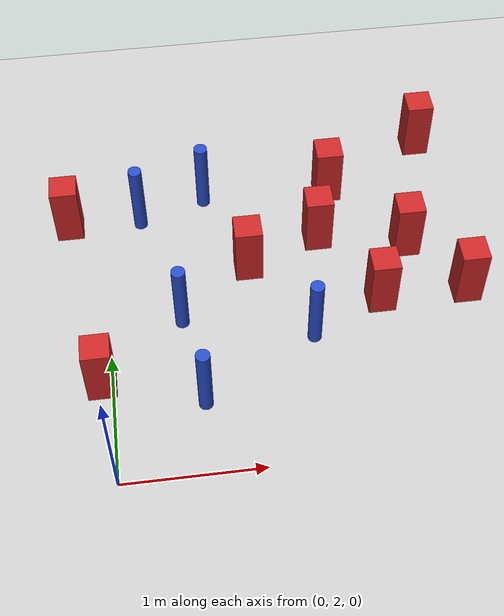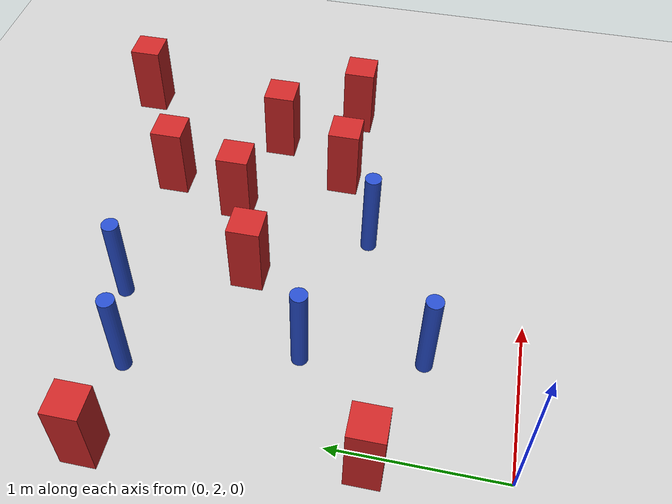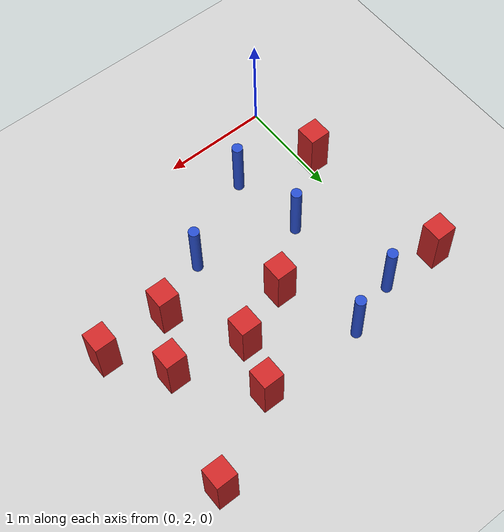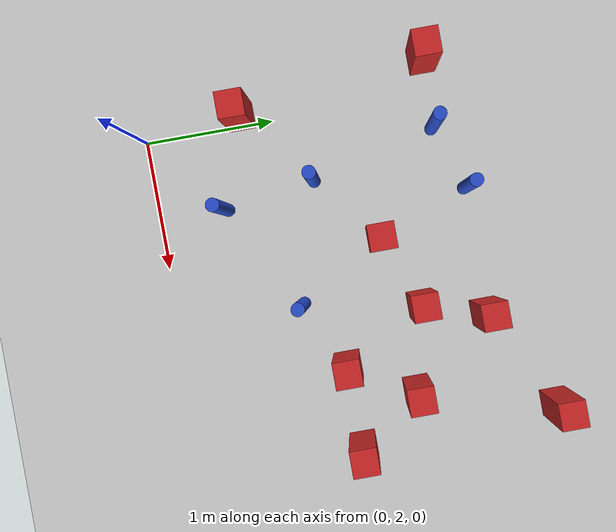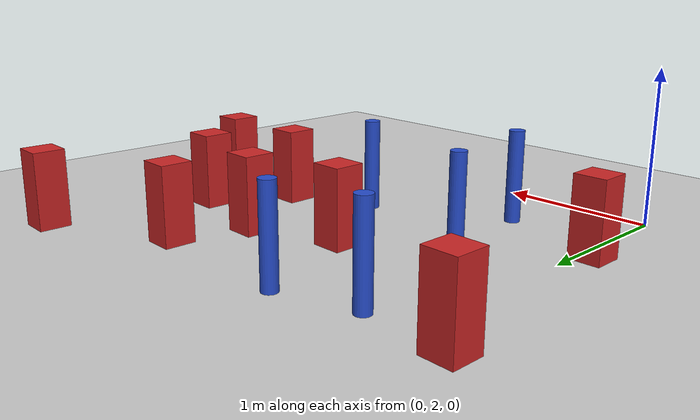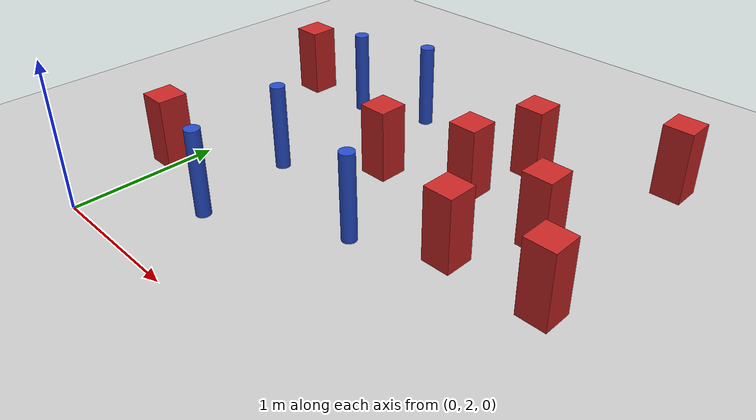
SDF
<sdf version="1.6">
 <world name="default">
  <model name="ground_plane">
   <static>1</static>
   <link name="link">
    <collision name="collision">
     <geometry><plane><normal>0 0 1</normal><size>100 100</size></plane></geometry>
     <surface><friction><ode><mu>100</mu><mu2>50</mu2></ode></friction></surface>
    </collision>
    <visual name="visual">
     <cast_shadows>0</cast_shadows>
     <geometry><plane><normal>0 0 1</normal><size>100 100</size></plane></geometry>
     <material>
      <ambient>1.0 1.0 1.0 1.0</ambient>
      <diffuse>0.8 0.8 0.8 1.0</diffuse>
      <specular>0.01 0.01 0.01 1.000000</specular>
     </material>
    </visual>
   </link>
  </model>
  <model name="pole_obstacle86">
   <static>true</static>
   <pose>0.523984293658 3.24302448291 2.88873142074e-08 -9.90536689505e-09 4.60219948997e-07 -1.20965994956e-07</pose>
   <link name="link">
    <pose>0 0 0.3 0 -0 0</pose>
    <inertial>
     <mass>1</mass>
     <inertia><ixx>0.145833</ixx><ixy>0</ixy><ixz>0</ixz><iyy>0.145833</iyy><iyz>0</iyz><izz>0.125</izz></inertia>
    </inertial>
    <collision name="collision">
     <geometry><cylinder><radius>0.05</radius><length>.6</length></cylinder></geometry>
    </collision>
    <visual name="visual">
     <geometry><cylinder><radius>0.05</radius><length>.6</length></cylinder></geometry>
     <material>
      <script><name>Gazebo/Blue</name><uri>file://media/materials/scripts/gazebo.material</uri></script>
     </material>
    </visual>
   </link>
  </model>
  <model name="pole_obstacle113">
   <static>true</static>
   <pose>0.784421894727 4.39077616772 2.88873142074e-08 -9.90536689661e-09 4.60219948993e-07 -1.20965994957e-07</pose>
   <link name="link">
    <pose>0 0 0.3 0 -0 0</pose>
    <inertial>
     <mass>1</mass>
     <inertia><ixx>0.145833</ixx><ixy>0</ixy><ixz>0</ixz><iyy>0.145833</iyy><iyz>0</iyz><izz>0.125</izz></inertia>
    </inertial>
    <collision name="collision">
     <geometry><cylinder><radius>0.05</radius><length>.6</length></cylinder></geometry>
    </collision>
    <visual name="visual">
     <geometry><cylinder><radius>0.05</radius><length>.6</length></cylinder></geometry>
     <material>
      <script><name>Gazebo/Blue</name><uri>file://media/materials/scripts/gazebo.material</uri></script>
     </material>
    </visual>
   </link>
  </model>
  <model name="pole_obstacle123">
   <static>true</static>
   <pose>0.280689724129 4.22093316909 2.88873142074e-08 -9.90536689592e-09 4.60219948995e-07 -1.20965994956e-07</pose>
   <link name="link">
    <pose>0 0 0.3 0 -0 0</pose>
    <inertial>
     <mass>1</mass>
     <inertia><ixx>0.145833</ixx><ixy>0</ixy><ixz>0</ixz><iyy>0.145833</iyy><iyz>0</iyz><izz>0.125</izz></inertia>
    </inertial>
    <collision name="collision">
     <geometry><cylinder><radius>0.05</radius><length>.6</length></cylinder></geometry>
    </collision>
    <visual name="visual">
     <geometry><cylinder><radius>0.05</radius><length>.6</length></cylinder></geometry>
     <material>
      <script><name>Gazebo/Blue</name><uri>file://media/materials/scripts/gazebo.material</uri></script>
     </material>
    </visual>
   </link>
  </model>
  <model name="pole_obstacle127">
   <static>true</static>
   <pose>1.45623892513 2.99795898132 2.88873142074e-08 -9.90536689791e-09 4.6021994899e-07 -1.20965994959e-07</pose>
   <link name="link">
    <pose>0 0 0.3 0 -0 0</pose>
    <inertial>
     <mass>1</mass>
     <inertia><ixx>0.145833</ixx><ixy>0</ixy><ixz>0</ixz><iyy>0.145833</iyy><iyz>0</iyz><izz>0.125</izz></inertia>
    </inertial>
    <collision name="collision">
     <geometry><cylinder><radius>0.05</radius><length>.6</length></cylinder></geometry>
    </collision>
    <visual name="visual">
     <geometry><cylinder><radius>0.05</radius><length>.6</length></cylinder></geometry>
     <material>
      <script><name>Gazebo/Blue</name><uri>file://media/materials/scripts/gazebo.material</uri></script>
     </material>
    </visual>
   </link>
  </model>
  <model name="square_post_obstacle124">
   <static>true</static>
   <pose>1.76323017512 4.37429988424 8.22691968438e-08 7.2212513382e-06 -7.54495500217e-07 2.29674213826e-05</pose>
   <link name="link">
    <pose>0 0 0.25 0 -0 0</pose>
    <inertial>
     <mass>100</mass>
     <inertia>
      <ixx>0.166667</ixx>
      <ixy>0</ixy>
      <ixz>0</ixz>
      <iyy>0.166667</iyy>
      <iyz>0</iyz>
      <izz>0.166667</izz>
     </inertia>
    </inertial>
    <collision name="collision"><geometry><box><size>.2 .2 .5</size></box></geometry></collision>
    <visual name="visual">
     <geometry><box><size>.2 .2 .5</size></box></geometry>
     <material>
      <script><name>Gazebo/Red</name><uri>file://media/materials/scripts/gazebo.material</uri></script>
     </material>
    </visual>
   </link>
  </model>
  <model name="square_post_obstacle129">
   <static>true</static>
   <pose>1.6125320471 3.89478876554 8.22691968438e-08 7.2212513382e-06 -7.54495500217e-07 2.29674213826e-05</pose>
   <link name="link">
    <pose>0 0 0.25 0 -0 0</pose>
    <inertial>
     <mass>100</mass>
     <inertia>
      <ixx>0.166667</ixx>
      <ixy>0</ixy>
      <ixz>0</ixz>
      <iyy>0.166667</iyy>
      <iyz>0</iyz>
      <izz>0.166667</izz>
     </inertia>
    </inertial>
    <collision name="collision"><geometry><box><size>.2 .2 .5</size></box></geometry></collision>
    <visual name="visual">
     <geometry><box><size>.2 .2 .5</size></box></geometry>
     <material>
      <script><name>Gazebo/Red</name><uri>file://media/materials/scripts/gazebo.material</uri></script>
     </material>
    </visual>
   </link>
  </model>
  <model name="square_post_obstacle155">
   <static>true</static>
   <pose>1.9850035333 3.25444834209 8.22691968438e-08 7.2212513382e-06 -7.54495500217e-07 2.29674213826e-05</pose>
   <link name="link">
    <pose>0 0 0.25 0 -0 0</pose>
    <inertial>
     <mass>100</mass>
     <inertia>
      <ixx>0.166667</ixx>
      <ixy>0</ixy>
      <ixz>0</ixz>
      <iyy>0.166667</iyy>
      <iyz>0</iyz>
      <izz>0.166667</izz>
     </inertia>
    </inertial>
    <collision name="collision"><geometry><box><size>.2 .2 .5</size></box></geometry></collision>
    <visual name="visual">
     <geometry><box><size>.2 .2 .5</size></box></geometry>
     <material>
      <script><name>Gazebo/Red</name><uri>file://media/materials/scripts/gazebo.material</uri></script>
     </material>
    </visual>
   </link>
  </model>
  <model name="pole_obstacle182">
   <static>true</static>
   <pose>0.628853617149 2.53935068962 2.88873142074e-08 -9.90536689636e-09 4.60219948994e-07 -1.20965994958e-07</pose>
   <link name="link">
    <pose>0 0 0.3 0 -0 0</pose>
    <inertial>
     <mass>1</mass>
     <inertia><ixx>0.145833</ixx><ixy>0</ixy><ixz>0</ixz><iyy>0.145833</iyy><iyz>0</iyz><izz>0.125</izz></inertia>
    </inertial>
    <collision name="collision">
     <geometry><cylinder><radius>0.05</radius><length>.6</length></cylinder></geometry>
    </collision>
    <visual name="visual">
     <geometry><cylinder><radius>0.05</radius><length>.6</length></cylinder></geometry>
     <material>
      <script><name>Gazebo/Blue</name><uri>file://media/materials/scripts/gazebo.material</uri></script>
     </material>
    </visual>
   </link>
  </model>
  <model name="square_post_obstacle185">
   <static>true</static>
   <pose>1.05565635378 3.67389673857 8.22691968438e-08 7.2212513382e-06 -7.54495500217e-07 2.29674213826e-05</pose>
   <link name="link">
    <pose>0 0 0.25 0 -0 0</pose>
    <inertial>
     <mass>100</mass>
     <inertia>
      <ixx>0.166667</ixx>
      <ixy>0</ixy>
      <ixz>0</ixz>
      <iyy>0.166667</iyy>
      <iyz>0</iyz>
      <izz>0.166667</izz>
     </inertia>
    </inertial>
    <collision name="collision"><geometry><box><size>.2 .2 .5</size></box></geometry></collision>
    <visual name="visual">
     <geometry><box><size>.2 .2 .5</size></box></geometry>
     <material>
      <script><name>Gazebo/Red</name><uri>file://media/materials/scripts/gazebo.material</uri></script>
     </material>
    </visual>
   </link>
  </model>
  <model name="square_post_obstacle198">
   <static>true</static>
   <pose>2.62771057106 3.26370215611 8.22691968438e-08 7.2212513382e-06 -7.54495500217e-07 2.29674213826e-05</pose>
   <link name="link">
    <pose>0 0 0.25 0 -0 0</pose>
    <inertial>
     <mass>100</mass>
     <inertia>
      <ixx>0.166667</ixx>
      <ixy>0</ixy>
      <ixz>0</ixz>
      <iyy>0.166667</iyy>
      <iyz>0</iyz>
      <izz>0.166667</izz>
     </inertia>
    </inertial>
    <collision name="collision"><geometry><box><size>.2 .2 .5</size></box></geometry></collision>
    <visual name="visual">
     <geometry><box><size>.2 .2 .5</size></box></geometry>
     <material>
      <script><name>Gazebo/Red</name><uri>file://media/materials/scripts/gazebo.material</uri></script>
     </material>
    </visual>
   </link>
  </model>
  <model name="square_post_obstacle201">
   <static>true</static>
   <pose>-0.074483538674 2.76652417153 8.22691968438e-08 7.2212513382e-06 -7.54495500217e-07 2.29674213826e-05</pose>
   <link name="link">
    <pose>0 0 0.25 0 -0 0</pose>
    <inertial>
     <mass>100</mass>
     <inertia>
      <ixx>0.166667</ixx>
      <ixy>0</ixy>
      <ixz>0</ixz>
      <iyy>0.166667</iyy>
      <iyz>0</iyz>
      <izz>0.166667</izz>
     </inertia>
    </inertial>
    <collision name="collision"><geometry><box><size>.2 .2 .5</size></box></geometry></collision>
    <visual name="visual">
     <geometry><box><size>.2 .2 .5</size></box></geometry>
     <material>
      <script><name>Gazebo/Red</name><uri>file://media/materials/scripts/gazebo.material</uri></script>
     </material>
    </visual>
   </link>
  </model>
  <model name="square_post_obstacle228">
   <static>true</static>
   <pose>2.55886003262 4.79333996466 8.22691968438e-08 7.22125133819e-06 -7.54495500217e-07 2.29674213826e-05</pose>
   <link name="link">
    <pose>0 0 0.25 0 -0 0</pose>
    <inertial>
     <mass>100</mass>
     <inertia>
      <ixx>0.166667</ixx>
      <ixy>0</ixy>
      <ixz>0</ixz>
      <iyy>0.166667</iyy>
      <iyz>0</iyz>
      <izz>0.166667</izz>
     </inertia>
    </inertial>
    <collision name="collision"><geometry><box><size>.2 .2 .5</size></box></geometry></collision>
    <visual name="visual">
     <geometry><box><size>.2 .2 .5</size></box></geometry>
     <material>
      <script><name>Gazebo/Red</name><uri>file://media/materials/scripts/gazebo.material</uri></script>
     </material>
    </visual>
   </link>
  </model>
  <model name="square_post_obstacle233">
   <static>true</static>
   <pose>-0.262476967378 4.23307996466 8.22691968438e-08 7.22125133819e-06 -7.54495500217e-07 2.29674213826e-05</pose>
   <link name="link">
    <pose>0 0 0.25 0 -0 0</pose>
    <inertial>
     <mass>100</mass>
     <inertia>
      <ixx>0.166667</ixx>
      <ixy>0</ixy>
      <ixz>0</ixz>
      <iyy>0.166667</iyy>
      <iyz>0</iyz>
      <izz>0.166667</izz>
     </inertia>
    </inertial>
    <collision name="collision"><geometry><box><size>.2 .2 .5</size></box></geometry></collision>
    <visual name="visual">
     <geometry><box><size>.2 .2 .5</size></box></geometry>
     <material>
      <script><name>Gazebo/Red</name><uri>file://media/materials/scripts/gazebo.material</uri></script>
     </material>
    </visual>
   </link>
  </model>
  <model name="square_post_obstacle240">
   <static>true</static>
   <pose>2.26857003262 3.74762996466 8.22691968438e-08 7.2212513382e-06 -7.54495500217e-07 2.29674213826e-05</pose>
   <link name="link">
    <pose>0 0 0.25 0 -0 0</pose>
    <inertial>
     <mass>100</mass>
     <inertia>
      <ixx>0.166667</ixx>
      <ixy>0</ixy>
      <ixz>0</ixz>
      <iyy>0.166667</iyy>
      <iyz>0</iyz>
      <izz>0.166667</izz>
     </inertia>
    </inertial>
    <collision name="collision"><geometry><box><size>.2 .2 .5</size></box></geometry></collision>
    <visual name="visual">
     <geometry><box><size>.2 .2 .5</size></box></geometry>
     <material>
      <script><name>Gazebo/Red</name><uri>file://media/materials/scripts/gazebo.material</uri></script>
     </material>
    </visual>
   </link>
  </model>
 </world>
</sdf>
